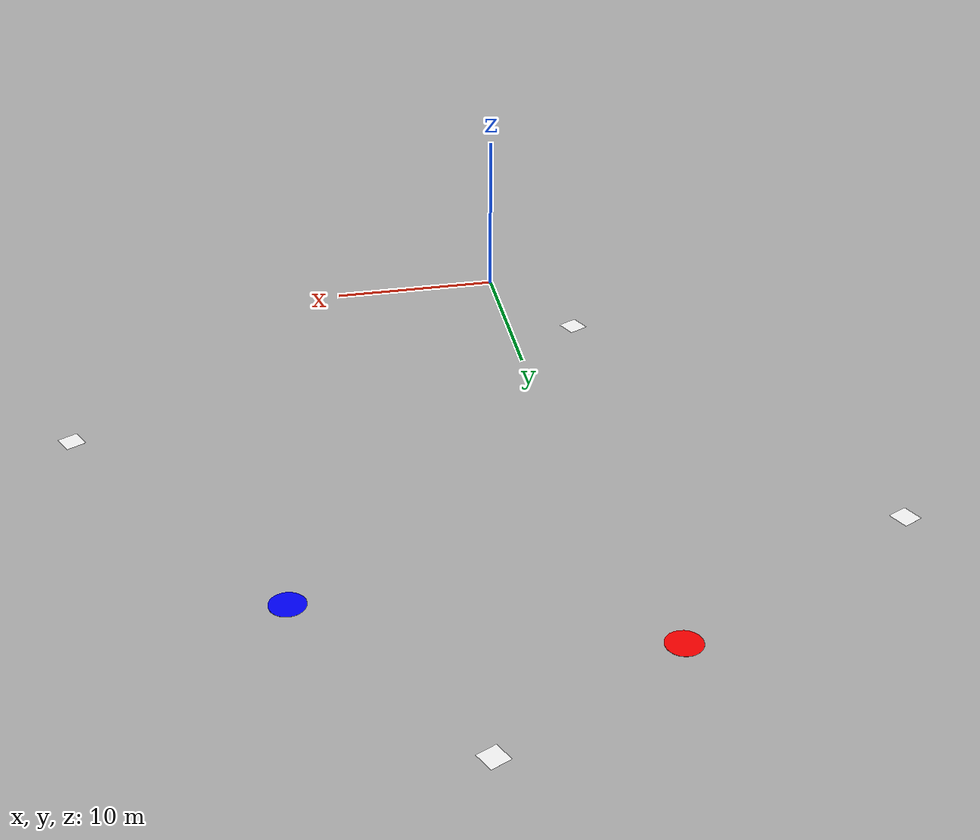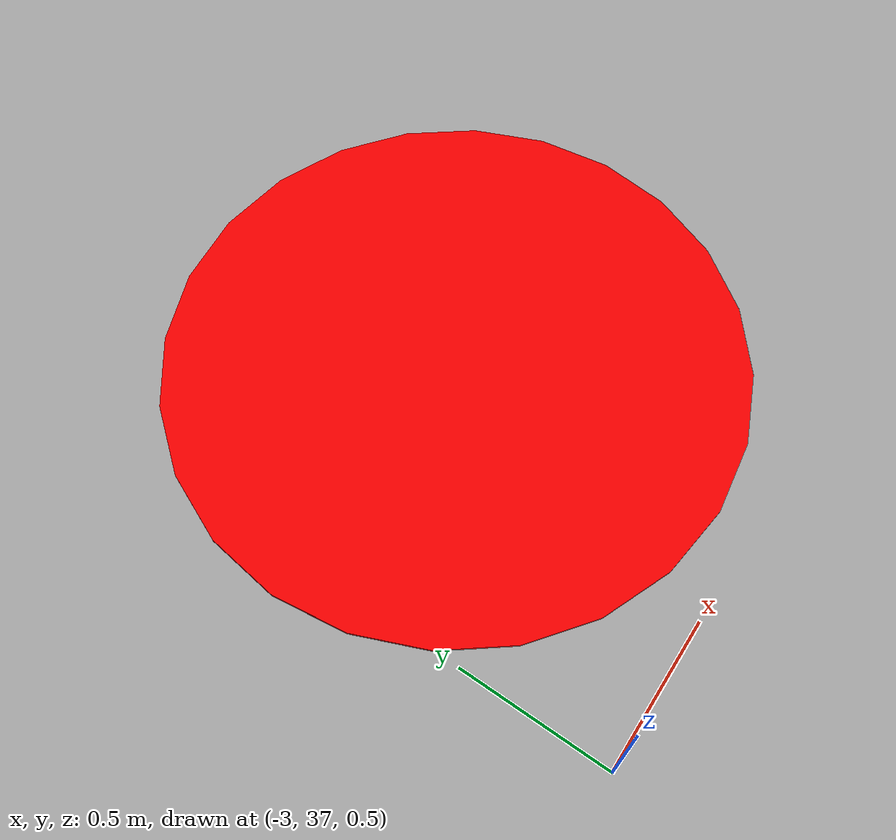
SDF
<sdf version="1.9">
 <world name="baylands_default_geo">
  <physics type="ode">
   <max_step_size>0.004</max_step_size>
   <real_time_factor>1.0</real_time_factor>
   <real_time_update_rate>250</real_time_update_rate>
  </physics>
  <gravity>0 0 -9.8</gravity>
  <magnetic_field>6e-06 2.3e-05 -4.2e-05</magnetic_field>
  <atmosphere type="adiabatic"/>
  <scene>
   <ambient>0.8 0.5 1</ambient>
   <grid>false</grid>
   <sky><clouds>true</clouds></sky>
   <shadows>1</shadows>
  </scene>
  <light name="sunUTC" type="directional">
   <pose>0 0 500 0 -0 0</pose>
   <cast_shadows>false</cast_shadows>
   <intensity>1</intensity>
   <direction>0.001 0.625 -0.78</direction>
   <diffuse>0.904 0.904 0.904 1</diffuse>
   <specular>0.271 0.271 0.271 1</specular>
   <attenuation><range>2000</range><linear>0</linear><constant>1</constant><quadratic>0</quadratic></attenuation>
  </light>
  <include>
   <uri>model://qr_model_1</uri>
   <name>qr_model_1</name>
   <pose>27.213 13.479 -0.31 -1.57 0 0.45</pose>
  </include>
  <include>
   <uri>model://qr_model_2</uri>
   <name>qr_model_2</name>
   <pose>8.525 43.896 0.15 -1.57 0 0.45</pose>
  </include>
  <include>
   <uri>model://qr_model_3</uri>
   <name>qr_model_3</name>
   <pose>-16.626 30.342 0.46 -1.57 0 0.45</pose>
  </include>
  <include>
   <uri>model://qr_model_4</uri>
   <name>qr_model_4</name>
   <pose>-3.996 6.679 0.1 -1.57 0 0.45</pose>
  </include>
  <include><uri>model://blue_area</uri><name>blue_area</name><pose>16.60 31.34 0.25 0 0 0</pose></include>
  <include><uri>model://red_area</uri><name>red_area</name><pose>-2.11 38.11 0.38 0 0 0</pose></include>
  <spherical_coordinates>
   <surface_model>EARTH_WGS84</surface_model>
   <world_frame_orientation>ENU</world_frame_orientation>
   <latitude_deg>-30.3</latitude_deg>
   <longitude_deg>-131.1</longitude_deg>
   <elevation>0</elevation>
  </spherical_coordinates>
 </world>
</sdf>

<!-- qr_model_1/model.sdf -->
<sdf version="1.9">
  <model name="qr_model_1">
    <static>true</static>
    <pose>0 0 0.01 -1.57079632679 0 0</pose>
    <link name="link">
      <visual name="visual">
        <cast_shadows>false</cast_shadows>
        <geometry>
          <plane>
            <normal>0 -1 0</normal>
            <size>1.2 1.2</size>
          </plane>
        </geometry>
        <material>
          <ambient>1.0 1.0 1.0 1.0</ambient>
          <diffuse>1.0 1.0 1.0 1.0</diffuse>
          <specular>0.0 0.0 0.0 1.0</specular>
          <emissive>0.0 0.0 0.0 1.0</emissive>
          <pbr>
            <metal>
              <albedo_map>model://qr_model_1/materials/textures/qr_1.png</albedo_map>
              <metalness>0.0</metalness>
              <roughness>1.0</roughness>
            </metal>
          </pbr>
        </material>
      </visual>
    </link>
  </model>
</sdf>

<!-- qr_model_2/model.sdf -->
<sdf version="1.9">
  <model name="qr_model_2">
    <static>true</static>
    <pose>0 0 0.01 -1.57079632679 0 0</pose>
    <link name="link">
      <visual name="visual">
        <cast_shadows>false</cast_shadows>
        <geometry>
          <plane>
            <normal>0 -1 0</normal>
            <size>1.2 1.2</size>
          </plane>
        </geometry>
        <material>
          <ambient>1.0 1.0 1.0 1.0</ambient>
          <diffuse>1.0 1.0 1.0 1.0</diffuse>
          <specular>0.0 0.0 0.0 1.0</specular>
          <emissive>0.0 0.0 0.0 1.0</emissive>
          <pbr>
            <metal>
              <albedo_map>model://qr_model_2/materials/textures/qr_2.png</albedo_map>
              <metalness>0.0</metalness>
              <roughness>1.0</roughness>
            </metal>
          </pbr>
        </material>
      </visual>
    </link>
  </model>
</sdf>

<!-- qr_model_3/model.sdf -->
<sdf version="1.9">
  <model name="qr_model_3">
    <static>true</static>
    <pose>0 0 0.01 -1.57079632679 0 0</pose>
    <link name="link">
      <visual name="visual">
        <cast_shadows>false</cast_shadows>
        <geometry>
          <plane>
            <normal>0 -1 0</normal>
            <size>1.2 1.2</size>
          </plane>
        </geometry>
        <material>
          <ambient>1.0 1.0 1.0 1.0</ambient>
          <diffuse>1.0 1.0 1.0 1.0</diffuse>
          <specular>0.0 0.0 0.0 1.0</specular>
          <emissive>0.0 0.0 0.0 1.0</emissive>
          <pbr>
            <metal>
              <albedo_map>model://qr_model_3/materials/textures/qr_3.png</albedo_map>
              <metalness>0.0</metalness>
              <roughness>1.0</roughness>
            </metal>
          </pbr>
        </material>
      </visual>
    </link>
  </model>
</sdf>

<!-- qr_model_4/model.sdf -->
<sdf version="1.9">
  <model name="qr_model_4">
    <static>true</static>
    <pose>0 0 0.01 -1.57079632679 0 0</pose>
    <link name="link">
      <visual name="visual">
        <cast_shadows>false</cast_shadows>
        <geometry>
          <plane>
            <normal>0 -1 0</normal>
            <size>1.2 1.2</size>
          </plane>
        </geometry>
        <material>
          <ambient>1.0 1.0 1.0 1.0</ambient>
          <diffuse>1.0 1.0 1.0 1.0</diffuse>
          <specular>0.0 0.0 0.0 1.0</specular>
          <emissive>0.0 0.0 0.0 1.0</emissive>
          <pbr>
            <metal>
              <albedo_map>model://qr_model_4/materials/textures/qr_4.png</albedo_map>
              <metalness>0.0</metalness>
              <roughness>1.0</roughness>
            </metal>
          </pbr>
        </material>
      </visual>
    </link>
  </model>
</sdf>

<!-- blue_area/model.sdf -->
<sdf version="1.9">
  <model name="blue_area">
    <static>true</static>
    <pose>0 0 0.01 0 0 0</pose>
    <link name="base">
      <visual name="visual">
        <cast_shadows>false</cast_shadows>
        <geometry>
          <cylinder>
            <radius>1</radius>
            <length>0.01</length>
          </cylinder>
        </geometry>
        <material>
          <ambient>0.0 0.0 1 1.0</ambient>
          <diffuse>0.0 0.0 1 1.0</diffuse>
          <specular>0.05 0.05 0.05 1.0</specular>
        </material>
      </visual>
      <collision name="collision">
        <geometry>
          <cylinder>
            <radius>0.6</radius>
            <length>0.01</length>
          </cylinder>
        </geometry>
      </collision>
    </link>
  </model>
</sdf>

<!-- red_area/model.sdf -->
<sdf version="1.9">
  <model name="red_area">
    <static>true</static>
    <pose>0 0 0.01 0 0 0</pose>
    <link name="base">
      <visual name="visual">
        <cast_shadows>false</cast_shadows>
        <geometry>
          <cylinder>
            <radius>1</radius>
            <length>0.01</length>
          </cylinder>
        </geometry>
        <material>
          <ambient>1 0.0 0.0 1.0</ambient>
          <diffuse>1 0.0 0.0 1.0</diffuse>
          <specular>0.05 0.05 0.05 1.0</specular>
        </material>
      </visual>
      <collision name="collision">
        <geometry>
          <cylinder>
            <radius>0.6</radius>
            <length>0.01</length>
          </cylinder>
        </geometry>
      </collision>
    </link>
  </model>
</sdf>
